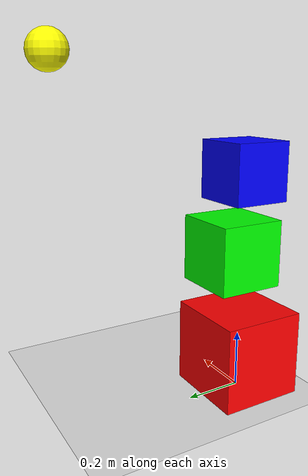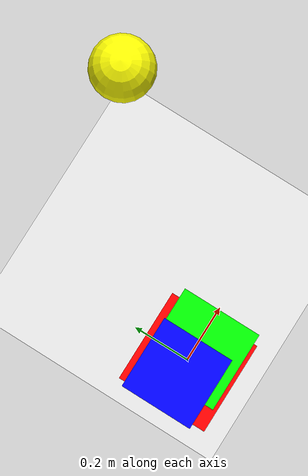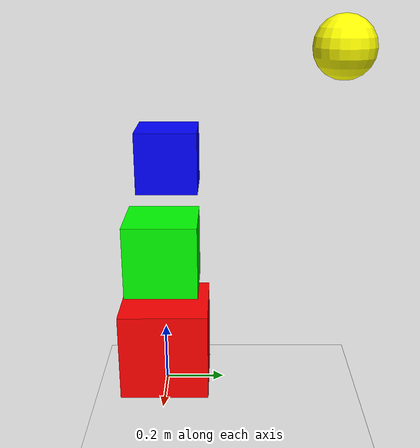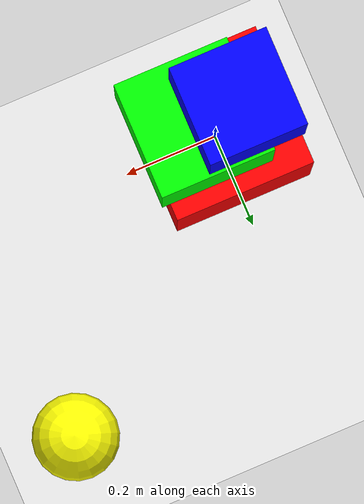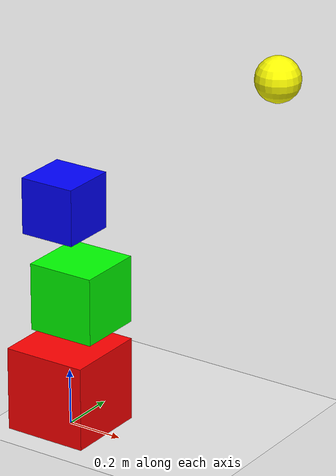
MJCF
<mujoco>
  <option gravity="0 0 -9.81"/>

  <worldbody>
    <light diffuse=".5 .5 .5" pos="0 0 3" dir="0 0 -1"/>
    <geom type="plane" size="2 2 0.1" rgba=".9 .9 .9 1"/>

    <body name="box1" pos="0 0 0.15">
      <joint type="free"/>
      <geom type="box" size="0.15 0.15 0.15" rgba="1 0 0 1" mass="1"/>
    </body>

    <body name="box2" pos="0.05 0 0.5">
      <joint type="free"/>
      <geom type="box" size="0.12 0.12 0.12" rgba="0 1 0 1" mass="1"/>
    </body>

    <body name="box3" pos="-0.03 0.02 0.8">
      <joint type="free"/>
      <geom type="box" size="0.1 0.1 0.1" rgba="0 0 1 1" mass="1"/>
    </body>

    <body name="sphere" pos="0.5 0.5 1.2">
      <joint type="free"/>
      <geom type="sphere" size="0.08" rgba="1 1 0 1" mass="0.5"/>
    </body>
  </worldbody>
</mujoco>
